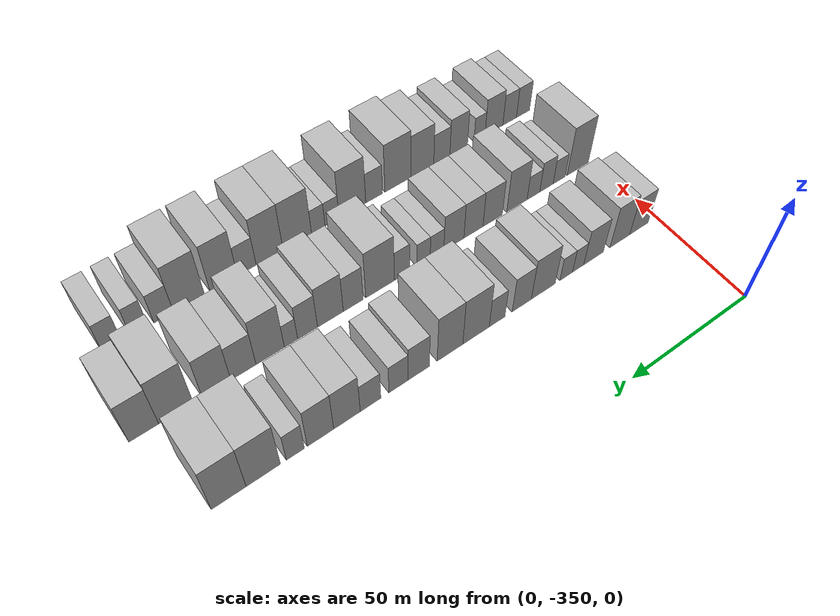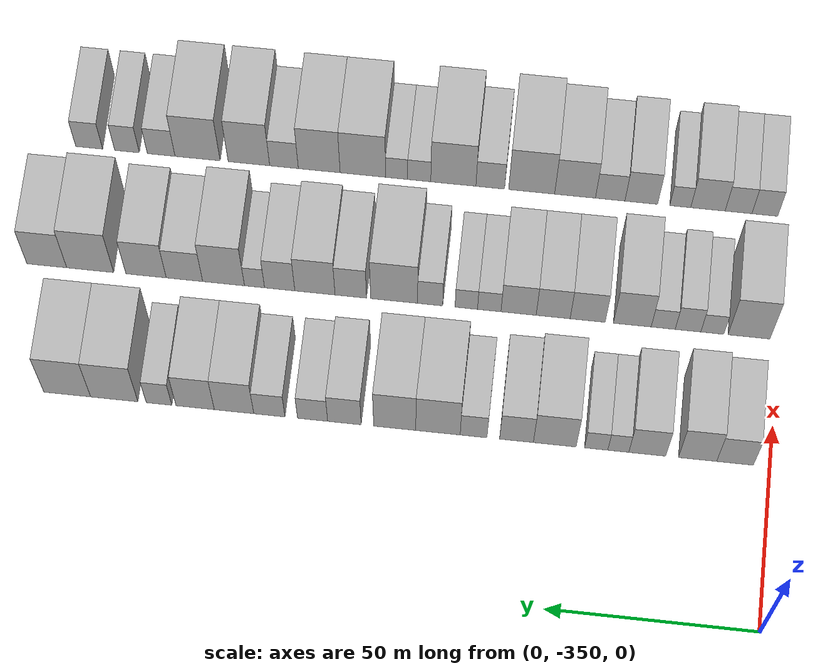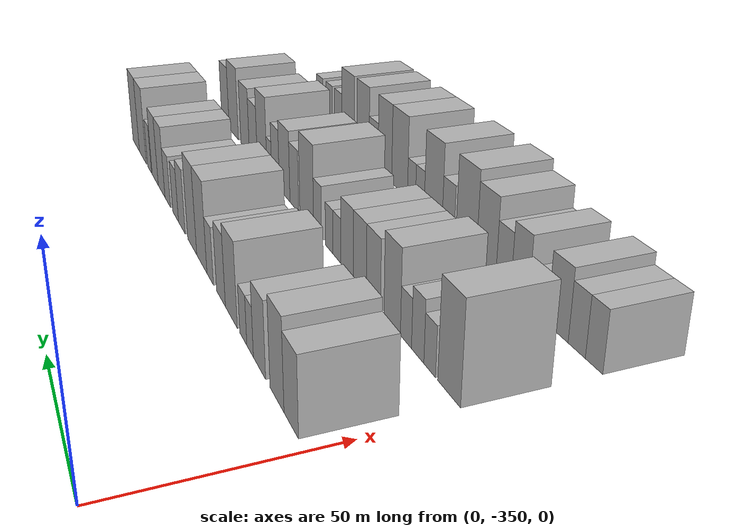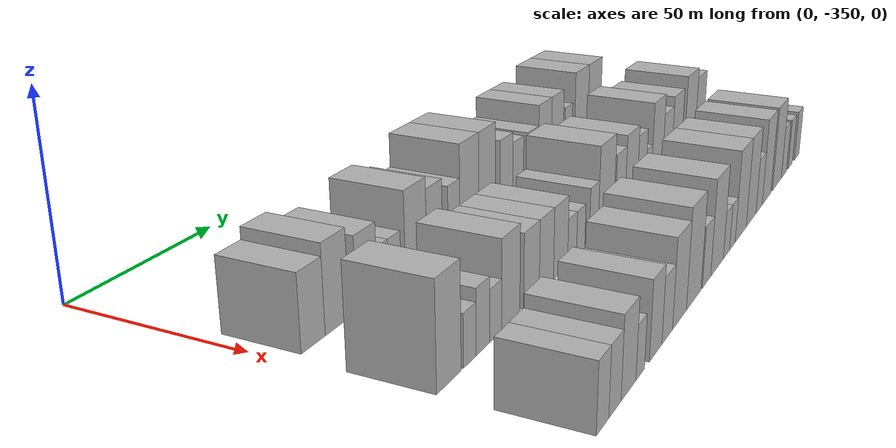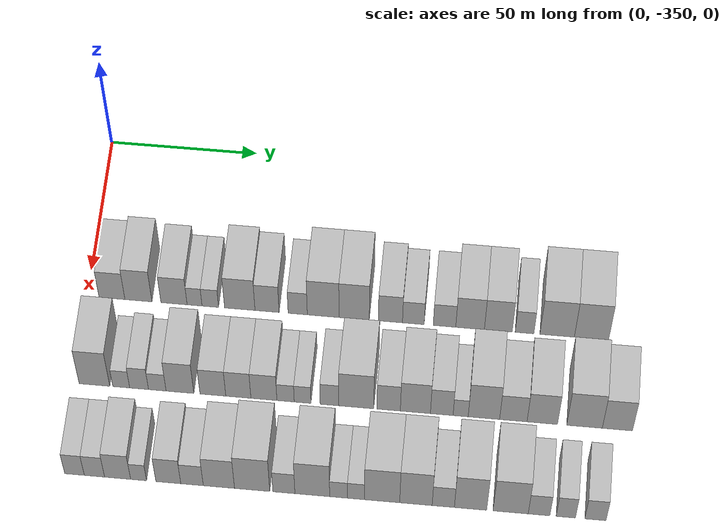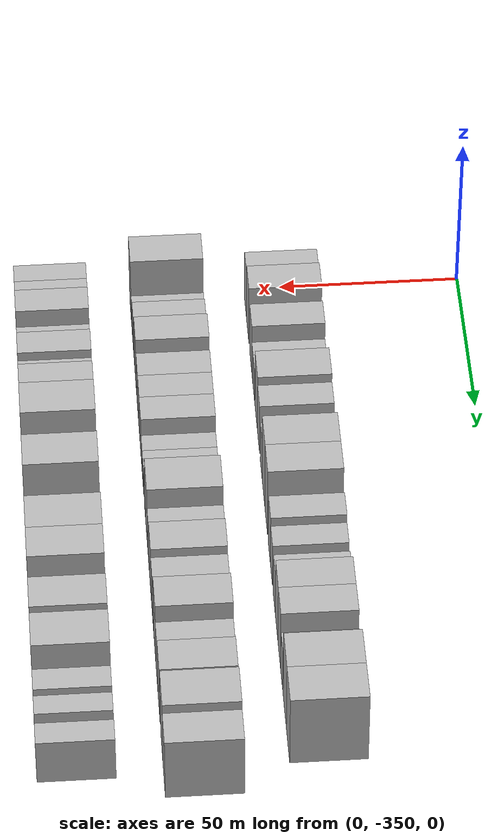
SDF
<sdf version="1.6">
 <world name="default">
  <model name="building_1">
   <static>1</static>
   <pose>50.0000 -341.6680 0 0.000000 0.000000 0.000000</pose>
   <link name="link">
    <pose>0 0 9.00 0 0 0</pose>
    <collision name="collision"><geometry><box><size>20.0000 8.6639 18.0000</size></box></geometry></collision>
    <visual name="visual">
     <cast_shadows>0</cast_shadows>
     <geometry><box><size>20.0000 8.6639 18.0000</size></box></geometry>
     <material>
      <script>
       <uri>model://HANNAS_wall/materials/scripts</uri>
       <uri>model://HANNAS_wall/materials/textures</uri>
       <name>vrc/HANNAS_wall</name>
      </script>
     </material>
    </visual>
   </link>
  </model>
  <model name="building_2">
   <static>1</static>
   <pose>50.0000 -332.8158 0 0.000000 0.000000 0.000000</pose>
   <link name="link">
    <pose>0 0 10.50 0 0 0</pose>
    <collision name="collision"><geometry><box><size>20.0000 9.0405 21.0000</size></box></geometry></collision>
    <visual name="visual">
     <cast_shadows>0</cast_shadows>
     <geometry><box><size>20.0000 9.0405 21.0000</size></box></geometry>
     <material>
      <script>
       <uri>model://HANNAS_wall/materials/scripts</uri>
       <uri>model://HANNAS_wall/materials/textures</uri>
       <name>vrc/HANNAS_wall</name>
      </script>
     </material>
    </visual>
   </link>
  </model>
  <model name="building_3">
   <static>1</static>
   <pose>50.0000 -320.9205 0 0.000000 0.000000 0.000000</pose>
   <link name="link">
    <pose>0 0 9.00 0 0 0</pose>
    <collision name="collision"><geometry><box><size>20.0000 8.7500 18.0000</size></box></geometry></collision>
    <visual name="visual">
     <cast_shadows>0</cast_shadows>
     <geometry><box><size>20.0000 8.7500 18.0000</size></box></geometry>
     <material>
      <script>
       <uri>model://HANNAS_wall/materials/scripts</uri>
       <uri>model://HANNAS_wall/materials/textures</uri>
       <name>vrc/HANNAS_wall</name>
      </script>
     </material>
    </visual>
   </link>
  </model>
  <model name="building_4">
   <static>1</static>
   <pose>50.0000 -314.0533 0 0.000000 0.000000 0.000000</pose>
   <link name="link">
    <pose>0 0 6.00 0 0 0</pose>
    <collision name="collision"><geometry><box><size>20.0000 4.9846 12.0000</size></box></geometry></collision>
    <visual name="visual">
     <cast_shadows>0</cast_shadows>
     <geometry><box><size>20.0000 4.9846 12.0000</size></box></geometry>
     <material>
      <script>
       <uri>model://HANNAS_wall/materials/scripts</uri>
       <uri>model://HANNAS_wall/materials/textures</uri>
       <name>vrc/HANNAS_wall</name>
      </script>
     </material>
    </visual>
   </link>
  </model>
  <model name="building_5">
   <static>1</static>
   <pose>50.0000 -308.8026 0 0.000000 0.000000 0.000000</pose>
   <link name="link">
    <pose>0 0 6.00 0 0 0</pose>
    <collision name="collision"><geometry><box><size>20.0000 5.5168 12.0000</size></box></geometry></collision>
    <visual name="visual">
     <cast_shadows>0</cast_shadows>
     <geometry><box><size>20.0000 5.5168 12.0000</size></box></geometry>
     <material>
      <script>
       <uri>model://HANNAS_wall/materials/scripts</uri>
       <uri>model://HANNAS_wall/materials/textures</uri>
       <name>vrc/HANNAS_wall</name>
      </script>
     </material>
    </visual>
   </link>
  </model>
  <model name="building_6">
   <static>1</static>
   <pose>50.0000 -298.9697 0 0.000000 0.000000 0.000000</pose>
   <link name="link">
    <pose>0 0 10.50 0 0 0</pose>
    <collision name="collision"><geometry><box><size>20.0000 10.1490 21.0000</size></box></geometry></collision>
    <visual name="visual">
     <cast_shadows>0</cast_shadows>
     <geometry><box><size>20.0000 10.1490 21.0000</size></box></geometry>
     <material>
      <script>
       <uri>model://HANNAS_wall/materials/scripts</uri>
       <uri>model://HANNAS_wall/materials/textures</uri>
       <name>vrc/HANNAS_wall</name>
      </script>
     </material>
    </visual>
   </link>
  </model>
  <model name="building_7">
   <static>1</static>
   <pose>50.0000 -289.8867 0 0.000000 0.000000 0.000000</pose>
   <link name="link">
    <pose>0 0 9.00 0 0 0</pose>
    <collision name="collision"><geometry><box><size>20.0000 8.0170 18.0000</size></box></geometry></collision>
    <visual name="visual">
     <cast_shadows>0</cast_shadows>
     <geometry><box><size>20.0000 8.0170 18.0000</size></box></geometry>
     <material>
      <script>
       <uri>model://HANNAS_wall/materials/scripts</uri>
       <uri>model://HANNAS_wall/materials/textures</uri>
       <name>vrc/HANNAS_wall</name>
      </script>
     </material>
    </visual>
   </link>
  </model>
  <model name="building_8">
   <static>1</static>
   <pose>50.0000 -279.6872 0 0.000000 0.000000 0.000000</pose>
   <link name="link">
    <pose>0 0 7.50 0 0 0</pose>
    <collision name="collision"><geometry><box><size>20.0000 6.3818 15.0000</size></box></geometry></collision>
    <visual name="visual">
     <cast_shadows>0</cast_shadows>
     <geometry><box><size>20.0000 6.3818 15.0000</size></box></geometry>
     <material>
      <script>
       <uri>model://HANNAS_wall/materials/scripts</uri>
       <uri>model://HANNAS_wall/materials/textures</uri>
       <name>vrc/HANNAS_wall</name>
      </script>
     </material>
    </visual>
   </link>
  </model>
  <model name="building_9">
   <static>1</static>
   <pose>50.0000 -271.2123 0 0.000000 0.000000 0.000000</pose>
   <link name="link">
    <pose>0 0 12.00 0 0 0</pose>
    <collision name="collision"><geometry><box><size>20.0000 10.5679 24.0000</size></box></geometry></collision>
    <visual name="visual">
     <cast_shadows>0</cast_shadows>
     <geometry><box><size>20.0000 10.5679 24.0000</size></box></geometry>
     <material>
      <script>
       <uri>model://HANNAS_wall/materials/scripts</uri>
       <uri>model://HANNAS_wall/materials/textures</uri>
       <name>vrc/HANNAS_wall</name>
      </script>
     </material>
    </visual>
   </link>
  </model>
  <model name="building_10">
   <static>1</static>
   <pose>50.0000 -260.9141 0 0.000000 0.000000 0.000000</pose>
   <link name="link">
    <pose>0 0 12.00 0 0 0</pose>
    <collision name="collision"><geometry><box><size>20.0000 10.0286 24.0000</size></box></geometry></collision>
    <visual name="visual">
     <cast_shadows>0</cast_shadows>
     <geometry><box><size>20.0000 10.0286 24.0000</size></box></geometry>
     <material>
      <script>
       <uri>model://HANNAS_wall/materials/scripts</uri>
       <uri>model://HANNAS_wall/materials/textures</uri>
       <name>vrc/HANNAS_wall</name>
      </script>
     </material>
    </visual>
   </link>
  </model>
  <model name="building_11">
   <static>1</static>
   <pose>50.0000 -248.8983 0 0.000000 0.000000 0.000000</pose>
   <link name="link">
    <pose>0 0 9.00 0 0 0</pose>
    <collision name="collision"><geometry><box><size>20.0000 8.0029 18.0000</size></box></geometry></collision>
    <visual name="visual">
     <cast_shadows>0</cast_shadows>
     <geometry><box><size>20.0000 8.0029 18.0000</size></box></geometry>
     <material>
      <script>
       <uri>model://HANNAS_wall/materials/scripts</uri>
       <uri>model://HANNAS_wall/materials/textures</uri>
       <name>vrc/HANNAS_wall</name>
      </script>
     </material>
    </visual>
   </link>
  </model>
  <model name="building_12">
   <static>1</static>
   <pose>50.0000 -241.3023 0 0.000000 0.000000 0.000000</pose>
   <link name="link">
    <pose>0 0 7.50 0 0 0</pose>
    <collision name="collision"><geometry><box><size>20.0000 7.1892 15.0000</size></box></geometry></collision>
    <visual name="visual">
     <cast_shadows>0</cast_shadows>
     <geometry><box><size>20.0000 7.1892 15.0000</size></box></geometry>
     <material>
      <script>
       <uri>model://HANNAS_wall/materials/scripts</uri>
       <uri>model://HANNAS_wall/materials/textures</uri>
       <name>vrc/HANNAS_wall</name>
      </script>
     </material>
    </visual>
   </link>
  </model>
  <model name="building_13">
   <static>1</static>
   <pose>50.0000 -230.9784 0 0.000000 0.000000 0.000000</pose>
   <link name="link">
    <pose>0 0 7.50 0 0 0</pose>
    <collision name="collision"><geometry><box><size>20.0000 7.4584 15.0000</size></box></geometry></collision>
    <visual name="visual">
     <cast_shadows>0</cast_shadows>
     <geometry><box><size>20.0000 7.4584 15.0000</size></box></geometry>
     <material>
      <script>
       <uri>model://HANNAS_wall/materials/scripts</uri>
       <uri>model://HANNAS_wall/materials/textures</uri>
       <name>vrc/HANNAS_wall</name>
      </script>
     </material>
    </visual>
   </link>
  </model>
  <model name="building_14">
   <static>1</static>
   <pose>50.0000 -222.5183 0 0.000000 0.000000 0.000000</pose>
   <link name="link">
    <pose>0 0 10.50 0 0 0</pose>
    <collision name="collision"><geometry><box><size>20.0000 9.4620 21.0000</size></box></geometry></collision>
    <visual name="visual">
     <cast_shadows>0</cast_shadows>
     <geometry><box><size>20.0000 9.4620 21.0000</size></box></geometry>
     <material>
      <script>
       <uri>model://HANNAS_wall/materials/scripts</uri>
       <uri>model://HANNAS_wall/materials/textures</uri>
       <name>vrc/HANNAS_wall</name>
      </script>
     </material>
    </visual>
   </link>
  </model>
  <model name="building_15">
   <static>1</static>
   <pose>50.0000 -213.1940 0 0.000000 0.000000 0.000000</pose>
   <link name="link">
    <pose>0 0 10.50 0 0 0</pose>
    <collision name="collision"><geometry><box><size>20.0000 9.1866 21.0000</size></box></geometry></collision>
    <visual name="visual">
     <cast_shadows>0</cast_shadows>
     <geometry><box><size>20.0000 9.1866 21.0000</size></box></geometry>
     <material>
      <script>
       <uri>model://HANNAS_wall/materials/scripts</uri>
       <uri>model://HANNAS_wall/materials/textures</uri>
       <name>vrc/HANNAS_wall</name>
      </script>
     </material>
    </visual>
   </link>
  </model>
  <model name="building_16">
   <static>1</static>
   <pose>50.0000 -204.5228 0 0.000000 0.000000 0.000000</pose>
   <link name="link">
    <pose>0 0 7.50 0 0 0</pose>
    <collision name="collision"><geometry><box><size>20.0000 6.1557 15.0000</size></box></geometry></collision>
    <visual name="visual">
     <cast_shadows>0</cast_shadows>
     <geometry><box><size>20.0000 6.1557 15.0000</size></box></geometry>
     <material>
      <script>
       <uri>model://HANNAS_wall/materials/scripts</uri>
       <uri>model://HANNAS_wall/materials/textures</uri>
       <name>vrc/HANNAS_wall</name>
      </script>
     </material>
    </visual>
   </link>
  </model>
  <model name="building_17">
   <static>1</static>
   <pose>50.0000 -193.7689 0 0.000000 0.000000 0.000000</pose>
   <link name="link">
    <pose>0 0 12.00 0 0 0</pose>
    <collision name="collision"><geometry><box><size>20.0000 11.3522 24.0000</size></box></geometry></collision>
    <visual name="visual">
     <cast_shadows>0</cast_shadows>
     <geometry><box><size>20.0000 11.3522 24.0000</size></box></geometry>
     <material>
      <script>
       <uri>model://HANNAS_wall/materials/scripts</uri>
       <uri>model://HANNAS_wall/materials/textures</uri>
       <name>vrc/HANNAS_wall</name>
      </script>
     </material>
    </visual>
   </link>
  </model>
  <model name="building_18">
   <static>1</static>
   <pose>50.0000 -182.4504 0 0.000000 0.000000 0.000000</pose>
   <link name="link">
    <pose>0 0 12.00 0 0 0</pose>
    <collision name="collision"><geometry><box><size>20.0000 11.2848 24.0000</size></box></geometry></collision>
    <visual name="visual">
     <cast_shadows>0</cast_shadows>
     <geometry><box><size>20.0000 11.2848 24.0000</size></box></geometry>
     <material>
      <script>
       <uri>model://HANNAS_wall/materials/scripts</uri>
       <uri>model://HANNAS_wall/materials/textures</uri>
       <name>vrc/HANNAS_wall</name>
      </script>
     </material>
    </visual>
   </link>
  </model>
  <model name="building_81">
   <static>1</static>
   <pose>82.0000 -342.9613 0 0.000000 0.000000 0.000000</pose>
   <link name="link">
    <pose>0 0 12.00 0 0 0</pose>
    <collision name="collision"><geometry><box><size>20.0000 10.0775 24.0000</size></box></geometry></collision>
    <visual name="visual">
     <cast_shadows>0</cast_shadows>
     <geometry><box><size>20.0000 10.0775 24.0000</size></box></geometry>
     <material>
      <script>
       <uri>model://HANNAS_wall/materials/scripts</uri>
       <uri>model://HANNAS_wall/materials/textures</uri>
       <name>vrc/HANNAS_wall</name>
      </script>
     </material>
    </visual>
   </link>
  </model>
  <model name="building_82">
   <static>1</static>
   <pose>82.0000 -334.1534 0 0.000000 0.000000 0.000000</pose>
   <link name="link">
    <pose>0 0 6.00 0 0 0</pose>
    <collision name="collision"><geometry><box><size>20.0000 5.5384 12.0000</size></box></geometry></collision>
    <visual name="visual">
     <cast_shadows>0</cast_shadows>
     <geometry><box><size>20.0000 5.5384 12.0000</size></box></geometry>
     <material>
      <script>
       <uri>model://HANNAS_wall/materials/scripts</uri>
       <uri>model://HANNAS_wall/materials/textures</uri>
       <name>vrc/HANNAS_wall</name>
      </script>
     </material>
    </visual>
   </link>
  </model>
  <model name="building_83">
   <static>1</static>
   <pose>82.0000 -328.2987 0 0.000000 0.000000 0.000000</pose>
   <link name="link">
    <pose>0 0 7.50 0 0 0</pose>
    <collision name="collision"><geometry><box><size>20.0000 6.1709 15.0000</size></box></geometry></collision>
    <visual name="visual">
     <cast_shadows>0</cast_shadows>
     <geometry><box><size>20.0000 6.1709 15.0000</size></box></geometry>
     <material>
      <script>
       <uri>model://HANNAS_wall/materials/scripts</uri>
       <uri>model://HANNAS_wall/materials/textures</uri>
       <name>vrc/HANNAS_wall</name>
      </script>
     </material>
    </visual>
   </link>
  </model>
  <model name="building_84">
   <static>1</static>
   <pose>82.0000 -322.3243 0 0.000000 0.000000 0.000000</pose>
   <link name="link">
    <pose>0 0 6.00 0 0 0</pose>
    <collision name="collision"><geometry><box><size>20.0000 5.7780 12.0000</size></box></geometry></collision>
    <visual name="visual">
     <cast_shadows>0</cast_shadows>
     <geometry><box><size>20.0000 5.7780 12.0000</size></box></geometry>
     <material>
      <script>
       <uri>model://HANNAS_wall/materials/scripts</uri>
       <uri>model://HANNAS_wall/materials/textures</uri>
       <name>vrc/HANNAS_wall</name>
      </script>
     </material>
    </visual>
   </link>
  </model>
  <model name="building_85">
   <static>1</static>
   <pose>82.0000 -314.8796 0 0.000000 0.000000 0.000000</pose>
   <link name="link">
    <pose>0 0 10.50 0 0 0</pose>
    <collision name="collision"><geometry><box><size>20.0000 9.1114 21.0000</size></box></geometry></collision>
    <visual name="visual">
     <cast_shadows>0</cast_shadows>
     <geometry><box><size>20.0000 9.1114 21.0000</size></box></geometry>
     <material>
      <script>
       <uri>model://HANNAS_wall/materials/scripts</uri>
       <uri>model://HANNAS_wall/materials/textures</uri>
       <name>vrc/HANNAS_wall</name>
      </script>
     </material>
    </visual>
   </link>
  </model>
  <model name="building_86">
   <static>1</static>
   <pose>82.0000 -304.0962 0 0.000000 0.000000 0.000000</pose>
   <link name="link">
    <pose>0 0 9.00 0 0 0</pose>
    <collision name="collision"><geometry><box><size>20.0000 8.4553 18.0000</size></box></geometry></collision>
    <visual name="visual">
     <cast_shadows>0</cast_shadows>
     <geometry><box><size>20.0000 8.4553 18.0000</size></box></geometry>
     <material>
      <script>
       <uri>model://HANNAS_wall/materials/scripts</uri>
       <uri>model://HANNAS_wall/materials/textures</uri>
       <name>vrc/HANNAS_wall</name>
      </script>
     </material>
    </visual>
   </link>
  </model>
  <model name="building_87">
   <static>1</static>
   <pose>82.0000 -295.7610 0 0.000000 0.000000 0.000000</pose>
   <link name="link">
    <pose>0 0 9.00 0 0 0</pose>
    <collision name="collision"><geometry><box><size>20.0000 8.2152 18.0000</size></box></geometry></collision>
    <visual name="visual">
     <cast_shadows>0</cast_shadows>
     <geometry><box><size>20.0000 8.2152 18.0000</size></box></geometry>
     <material>
      <script>
       <uri>model://HANNAS_wall/materials/scripts</uri>
       <uri>model://HANNAS_wall/materials/textures</uri>
       <name>vrc/HANNAS_wall</name>
      </script>
     </material>
    </visual>
   </link>
  </model>
  <model name="building_88">
   <static>1</static>
   <pose>82.0000 -287.3964 0 0.000000 0.000000 0.000000</pose>
   <link name="link">
    <pose>0 0 9.00 0 0 0</pose>
    <collision name="collision"><geometry><box><size>20.0000 8.5140 18.0000</size></box></geometry></collision>
    <visual name="visual">
     <cast_shadows>0</cast_shadows>
     <geometry><box><size>20.0000 8.5140 18.0000</size></box></geometry>
     <material>
      <script>
       <uri>model://HANNAS_wall/materials/scripts</uri>
       <uri>model://HANNAS_wall/materials/textures</uri>
       <name>vrc/HANNAS_wall</name>
      </script>
     </material>
    </visual>
   </link>
  </model>
  <model name="building_89">
   <static>1</static>
   <pose>82.0000 -280.3068 0 0.000000 0.000000 0.000000</pose>
   <link name="link">
    <pose>0 0 6.00 0 0 0</pose>
    <collision name="collision"><geometry><box><size>20.0000 5.6651 12.0000</size></box></geometry></collision>
    <visual name="visual">
     <cast_shadows>0</cast_shadows>
     <geometry><box><size>20.0000 5.6651 12.0000</size></box></geometry>
     <material>
      <script>
       <uri>model://HANNAS_wall/materials/scripts</uri>
       <uri>model://HANNAS_wall/materials/textures</uri>
       <name>vrc/HANNAS_wall</name>
      </script>
     </material>
    </visual>
   </link>
  </model>
  <model name="building_90">
   <static>1</static>
   <pose>82.0000 -274.7508 0 0.000000 0.000000 0.000000</pose>
   <link name="link">
    <pose>0 0 6.00 0 0 0</pose>
    <collision name="collision"><geometry><box><size>20.0000 5.4470 12.0000</size></box></geometry></collision>
    <visual name="visual">
     <cast_shadows>0</cast_shadows>
     <geometry><box><size>20.0000 5.4470 12.0000</size></box></geometry>
     <material>
      <script>
       <uri>model://HANNAS_wall/materials/scripts</uri>
       <uri>model://HANNAS_wall/materials/textures</uri>
       <name>vrc/HANNAS_wall</name>
      </script>
     </material>
    </visual>
   </link>
  </model>
  <model name="building_91">
   <static>1</static>
   <pose>82.0000 -265.9827 0 0.000000 0.000000 0.000000</pose>
   <link name="link">
    <pose>0 0 7.50 0 0 0</pose>
    <collision name="collision"><geometry><box><size>20.0000 6.0891 15.0000</size></box></geometry></collision>
    <visual name="visual">
     <cast_shadows>0</cast_shadows>
     <geometry><box><size>20.0000 6.0891 15.0000</size></box></geometry>
     <material>
      <script>
       <uri>model://HANNAS_wall/materials/scripts</uri>
       <uri>model://HANNAS_wall/materials/textures</uri>
       <name>vrc/HANNAS_wall</name>
      </script>
     </material>
    </visual>
   </link>
  </model>
  <model name="building_92">
   <static>1</static>
   <pose>82.0000 -257.2447 0 0.000000 0.000000 0.000000</pose>
   <link name="link">
    <pose>0 0 12.00 0 0 0</pose>
    <collision name="collision"><geometry><box><size>20.0000 11.3870 24.0000</size></box></geometry></collision>
    <visual name="visual">
     <cast_shadows>0</cast_shadows>
     <geometry><box><size>20.0000 11.3870 24.0000</size></box></geometry>
     <material>
      <script>
       <uri>model://HANNAS_wall/materials/scripts</uri>
       <uri>model://HANNAS_wall/materials/textures</uri>
       <name>vrc/HANNAS_wall</name>
      </script>
     </material>
    </visual>
   </link>
  </model>
  <model name="building_93">
   <static>1</static>
   <pose>82.0000 -246.7193 0 0.000000 0.000000 0.000000</pose>
   <link name="link">
    <pose>0 0 9.00 0 0 0</pose>
    <collision name="collision"><geometry><box><size>20.0000 7.6638 18.0000</size></box></geometry></collision>
    <visual name="visual">
     <cast_shadows>0</cast_shadows>
     <geometry><box><size>20.0000 7.6638 18.0000</size></box></geometry>
     <material>
      <script>
       <uri>model://HANNAS_wall/materials/scripts</uri>
       <uri>model://HANNAS_wall/materials/textures</uri>
       <name>vrc/HANNAS_wall</name>
      </script>
     </material>
    </visual>
   </link>
  </model>
  <model name="building_94">
   <static>1</static>
   <pose>82.0000 -237.9976 0 0.000000 0.000000 0.000000</pose>
   <link name="link">
    <pose>0 0 10.50 0 0 0</pose>
    <collision name="collision"><geometry><box><size>20.0000 9.7795 21.0000</size></box></geometry></collision>
    <visual name="visual">
     <cast_shadows>0</cast_shadows>
     <geometry><box><size>20.0000 9.7795 21.0000</size></box></geometry>
     <material>
      <script>
       <uri>model://HANNAS_wall/materials/scripts</uri>
       <uri>model://HANNAS_wall/materials/textures</uri>
       <name>vrc/HANNAS_wall</name>
      </script>
     </material>
    </visual>
   </link>
  </model>
  <model name="building_95">
   <static>1</static>
   <pose>82.0000 -229.4237 0 0.000000 0.000000 0.000000</pose>
   <link name="link">
    <pose>0 0 9.00 0 0 0</pose>
    <collision name="collision"><geometry><box><size>20.0000 7.3684 18.0000</size></box></geometry></collision>
    <visual name="visual">
     <cast_shadows>0</cast_shadows>
     <geometry><box><size>20.0000 7.3684 18.0000</size></box></geometry>
     <material>
      <script>
       <uri>model://HANNAS_wall/materials/scripts</uri>
       <uri>model://HANNAS_wall/materials/textures</uri>
       <name>vrc/HANNAS_wall</name>
      </script>
     </material>
    </visual>
   </link>
  </model>
  <model name="building_96">
   <static>1</static>
   <pose>82.0000 -223.2938 0 0.000000 0.000000 0.000000</pose>
   <link name="link">
    <pose>0 0 6.00 0 0 0</pose>
    <collision name="collision"><geometry><box><size>20.0000 4.8915 12.0000</size></box></geometry></collision>
    <visual name="visual">
     <cast_shadows>0</cast_shadows>
     <geometry><box><size>20.0000 4.8915 12.0000</size></box></geometry>
     <material>
      <script>
       <uri>model://HANNAS_wall/materials/scripts</uri>
       <uri>model://HANNAS_wall/materials/textures</uri>
       <name>vrc/HANNAS_wall</name>
      </script>
     </material>
    </visual>
   </link>
  </model>
  <model name="building_97">
   <static>1</static>
   <pose>82.0000 -215.7499 0 0.000000 0.000000 0.000000</pose>
   <link name="link">
    <pose>0 0 12.00 0 0 0</pose>
    <collision name="collision"><geometry><box><size>20.0000 10.1962 24.0000</size></box></geometry></collision>
    <visual name="visual">
     <cast_shadows>0</cast_shadows>
     <geometry><box><size>20.0000 10.1962 24.0000</size></box></geometry>
     <material>
      <script>
       <uri>model://HANNAS_wall/materials/scripts</uri>
       <uri>model://HANNAS_wall/materials/textures</uri>
       <name>vrc/HANNAS_wall</name>
      </script>
     </material>
    </visual>
   </link>
  </model>
  <model name="building_98">
   <static>1</static>
   <pose>82.0000 -206.2066 0 0.000000 0.000000 0.000000</pose>
   <link name="link">
    <pose>0 0 9.00 0 0 0</pose>
    <collision name="collision"><geometry><box><size>20.0000 8.8903 18.0000</size></box></geometry></collision>
    <visual name="visual">
     <cast_shadows>0</cast_shadows>
     <geometry><box><size>20.0000 8.8903 18.0000</size></box></geometry>
     <material>
      <script>
       <uri>model://HANNAS_wall/materials/scripts</uri>
       <uri>model://HANNAS_wall/materials/textures</uri>
       <name>vrc/HANNAS_wall</name>
      </script>
     </material>
    </visual>
   </link>
  </model>
  <model name="building_99">
   <static>1</static>
   <pose>82.0000 -196.8253 0 0.000000 0.000000 0.000000</pose>
   <link name="link">
    <pose>0 0 10.50 0 0 0</pose>
    <collision name="collision"><geometry><box><size>20.0000 9.8723 21.0000</size></box></geometry></collision>
    <visual name="visual">
     <cast_shadows>0</cast_shadows>
     <geometry><box><size>20.0000 9.8723 21.0000</size></box></geometry>
     <material>
      <script>
       <uri>model://HANNAS_wall/materials/scripts</uri>
       <uri>model://HANNAS_wall/materials/textures</uri>
       <name>vrc/HANNAS_wall</name>
      </script>
     </material>
    </visual>
   </link>
  </model>
  <model name="building_100">
   <static>1</static>
   <pose>82.0000 -183.1385 0 0.000000 0.000000 0.000000</pose>
   <link name="link">
    <pose>0 0 12.00 0 0 0</pose>
    <collision name="collision"><geometry><box><size>20.0000 11.5013 24.0000</size></box></geometry></collision>
    <visual name="visual">
     <cast_shadows>0</cast_shadows>
     <geometry><box><size>20.0000 11.5013 24.0000</size></box></geometry>
     <material>
      <script>
       <uri>model://HANNAS_wall/materials/scripts</uri>
       <uri>model://HANNAS_wall/materials/textures</uri>
       <name>vrc/HANNAS_wall</name>
      </script>
     </material>
    </visual>
   </link>
  </model>
  <model name="building_101">
   <static>1</static>
   <pose>82.0000 -172.5107 0 0.000000 0.000000 0.000000</pose>
   <link name="link">
    <pose>0 0 10.50 0 0 0</pose>
    <collision name="collision"><geometry><box><size>20.0000 9.7541 21.0000</size></box></geometry></collision>
    <visual name="visual">
     <cast_shadows>0</cast_shadows>
     <geometry><box><size>20.0000 9.7541 21.0000</size></box></geometry>
     <material>
      <script>
       <uri>model://HANNAS_wall/materials/scripts</uri>
       <uri>model://HANNAS_wall/materials/textures</uri>
       <name>vrc/HANNAS_wall</name>
      </script>
     </material>
    </visual>
   </link>
  </model>
  <model name="building_159">
   <static>1</static>
   <pose>114.0000 -344.8388 0 0.000000 0.000000 0.000000</pose>
   <link name="link">
    <pose>0 0 7.50 0 0 0</pose>
    <collision name="collision"><geometry><box><size>20.0000 6.3224 15.0000</size></box></geometry></collision>
    <visual name="visual">
     <cast_shadows>0</cast_shadows>
     <geometry><box><size>20.0000 6.3224 15.0000</size></box></geometry>
     <material>
      <script>
       <uri>model://HANNAS_wall/materials/scripts</uri>
       <uri>model://HANNAS_wall/materials/textures</uri>
       <name>vrc/HANNAS_wall</name>
      </script>
     </material>
    </visual>
   </link>
  </model>
  <model name="building_160">
   <static>1</static>
   <pose>114.0000 -338.4026 0 0.000000 0.000000 0.000000</pose>
   <link name="link">
    <pose>0 0 7.50 0 0 0</pose>
    <collision name="collision"><geometry><box><size>20.0000 6.5500 15.0000</size></box></geometry></collision>
    <visual name="visual">
     <cast_shadows>0</cast_shadows>
     <geometry><box><size>20.0000 6.5500 15.0000</size></box></geometry>
     <material>
      <script>
       <uri>model://HANNAS_wall/materials/scripts</uri>
       <uri>model://HANNAS_wall/materials/textures</uri>
       <name>vrc/HANNAS_wall</name>
      </script>
     </material>
    </visual>
   </link>
  </model>
  <model name="building_161">
   <static>1</static>
   <pose>114.0000 -330.9198 0 0.000000 0.000000 0.000000</pose>
   <link name="link">
    <pose>0 0 9.00 0 0 0</pose>
    <collision name="collision"><geometry><box><size>20.0000 8.4155 18.0000</size></box></geometry></collision>
    <visual name="visual">
     <cast_shadows>0</cast_shadows>
     <geometry><box><size>20.0000 8.4155 18.0000</size></box></geometry>
     <material>
      <script>
       <uri>model://HANNAS_wall/materials/scripts</uri>
       <uri>model://HANNAS_wall/materials/textures</uri>
       <name>vrc/HANNAS_wall</name>
      </script>
     </material>
    </visual>
   </link>
  </model>
  <model name="building_162">
   <static>1</static>
   <pose>114.0000 -324.1493 0 0.000000 0.000000 0.000000</pose>
   <link name="link">
    <pose>0 0 6.00 0 0 0</pose>
    <collision name="collision"><geometry><box><size>20.0000 5.1255 12.0000</size></box></geometry></collision>
    <visual name="visual">
     <cast_shadows>0</cast_shadows>
     <geometry><box><size>20.0000 5.1255 12.0000</size></box></geometry>
     <material>
      <script>
       <uri>model://HANNAS_wall/materials/scripts</uri>
       <uri>model://HANNAS_wall/materials/textures</uri>
       <name>vrc/HANNAS_wall</name>
      </script>
     </material>
    </visual>
   </link>
  </model>
  <model name="building_163">
   <static>1</static>
   <pose>114.0000 -314.5794 0 0.000000 0.000000 0.000000</pose>
   <link name="link">
    <pose>0 0 9.00 0 0 0</pose>
    <collision name="collision"><geometry><box><size>20.0000 8.0145 18.0000</size></box></geometry></collision>
    <visual name="visual">
     <cast_shadows>0</cast_shadows>
     <geometry><box><size>20.0000 8.0145 18.0000</size></box></geometry>
     <material>
      <script>
       <uri>model://HANNAS_wall/materials/scripts</uri>
       <uri>model://HANNAS_wall/materials/textures</uri>
       <name>vrc/HANNAS_wall</name>
      </script>
     </material>
    </visual>
   </link>
  </model>
  <model name="building_164">
   <static>1</static>
   <pose>114.0000 -306.9518 0 0.000000 0.000000 0.000000</pose>
   <link name="link">
    <pose>0 0 7.50 0 0 0</pose>
    <collision name="collision"><geometry><box><size>20.0000 7.2407 15.0000</size></box></geometry></collision>
    <visual name="visual">
     <cast_shadows>0</cast_shadows>
     <geometry><box><size>20.0000 7.2407 15.0000</size></box></geometry>
     <material>
      <script>
       <uri>model://HANNAS_wall/materials/scripts</uri>
       <uri>model://HANNAS_wall/materials/textures</uri>
       <name>vrc/HANNAS_wall</name>
      </script>
     </material>
    </visual>
   </link>
  </model>
  <model name="building_165">
   <static>1</static>
   <pose>114.0000 -298.3111 0 0.000000 0.000000 0.000000</pose>
   <link name="link">
    <pose>0 0 10.50 0 0 0</pose>
    <collision name="collision"><geometry><box><size>20.0000 10.0407 21.0000</size></box></geometry></collision>
    <visual name="visual">
     <cast_shadows>0</cast_shadows>
     <geometry><box><size>20.0000 10.0407 21.0000</size></box></geometry>
     <material>
      <script>
       <uri>model://HANNAS_wall/materials/scripts</uri>
       <uri>model://HANNAS_wall/materials/textures</uri>
       <name>vrc/HANNAS_wall</name>
      </script>
     </material>
    </visual>
   </link>
  </model>
  <model name="building_166">
   <static>1</static>
   <pose>114.0000 -287.6325 0 0.000000 0.000000 0.000000</pose>
   <link name="link">
    <pose>0 0 12.00 0 0 0</pose>
    <collision name="collision"><geometry><box><size>20.0000 11.3166 24.0000</size></box></geometry></collision>
    <visual name="visual">
     <cast_shadows>0</cast_shadows>
     <geometry><box><size>20.0000 11.3166 24.0000</size></box></geometry>
     <material>
      <script>
       <uri>model://HANNAS_wall/materials/scripts</uri>
       <uri>model://HANNAS_wall/materials/textures</uri>
       <name>vrc/HANNAS_wall</name>
      </script>
     </material>
    </visual>
   </link>
  </model>
  <model name="building_167">
   <static>1</static>
   <pose>114.0000 -277.4454 0 0.000000 0.000000 0.000000</pose>
   <link name="link">
    <pose>0 0 7.50 0 0 0</pose>
    <collision name="collision"><geometry><box><size>20.0000 7.0577 15.0000</size></box></geometry></collision>
    <visual name="visual">
     <cast_shadows>0</cast_shadows>
     <geometry><box><size>20.0000 7.0577 15.0000</size></box></geometry>
     <material>
      <script>
       <uri>model://HANNAS_wall/materials/scripts</uri>
       <uri>model://HANNAS_wall/materials/textures</uri>
       <name>vrc/HANNAS_wall</name>
      </script>
     </material>
    </visual>
   </link>
  </model>
  <model name="building_168">
   <static>1</static>
   <pose>114.0000 -268.3511 0 0.000000 0.000000 0.000000</pose>
   <link name="link">
    <pose>0 0 12.00 0 0 0</pose>
    <collision name="collision"><geometry><box><size>20.0000 11.1310 24.0000</size></box></geometry></collision>
    <visual name="visual">
     <cast_shadows>0</cast_shadows>
     <geometry><box><size>20.0000 11.1310 24.0000</size></box></geometry>
     <material>
      <script>
       <uri>model://HANNAS_wall/materials/scripts</uri>
       <uri>model://HANNAS_wall/materials/textures</uri>
       <name>vrc/HANNAS_wall</name>
      </script>
     </material>
    </visual>
   </link>
  </model>
  <model name="building_169">
   <static>1</static>
   <pose>114.0000 -259.9375 0 0.000000 0.000000 0.000000</pose>
   <link name="link">
    <pose>0 0 6.00 0 0 0</pose>
    <collision name="collision"><geometry><box><size>20.0000 5.6962 12.0000</size></box></geometry></collision>
    <visual name="visual">
     <cast_shadows>0</cast_shadows>
     <geometry><box><size>20.0000 5.6962 12.0000</size></box></geometry>
     <material>
      <script>
       <uri>model://HANNAS_wall/materials/scripts</uri>
       <uri>model://HANNAS_wall/materials/textures</uri>
       <name>vrc/HANNAS_wall</name>
      </script>
     </material>
    </visual>
   </link>
  </model>
  <model name="building_170">
   <static>1</static>
   <pose>114.0000 -254.3724 0 0.000000 0.000000 0.000000</pose>
   <link name="link">
    <pose>0 0 6.00 0 0 0</pose>
    <collision name="collision"><geometry><box><size>20.0000 5.4340 12.0000</size></box></geometry></collision>
    <visual name="visual">
     <cast_shadows>0</cast_shadows>
     <geometry><box><size>20.0000 5.4340 12.0000</size></box></geometry>
     <material>
      <script>
       <uri>model://HANNAS_wall/materials/scripts</uri>
       <uri>model://HANNAS_wall/materials/textures</uri>
       <name>vrc/HANNAS_wall</name>
      </script>
     </material>
    </visual>
   </link>
  </model>
  <model name="building_171">
   <static>1</static>
   <pose>114.0000 -246.0169 0 0.000000 0.000000 0.000000</pose>
   <link name="link">
    <pose>0 0 12.00 0 0 0</pose>
    <collision name="collision"><geometry><box><size>20.0000 11.2771 24.0000</size></box></geometry></collision>
    <visual name="visual">
     <cast_shadows>0</cast_shadows>
     <geometry><box><size>20.0000 11.2771 24.0000</size></box></geometry>
     <material>
      <script>
       <uri>model://HANNAS_wall/materials/scripts</uri>
       <uri>model://HANNAS_wall/materials/textures</uri>
       <name>vrc/HANNAS_wall</name>
      </script>
     </material>
    </visual>
   </link>
  </model>
  <model name="building_172">
   <static>1</static>
   <pose>114.0000 -235.2030 0 0.000000 0.000000 0.000000</pose>
   <link name="link">
    <pose>0 0 12.00 0 0 0</pose>
    <collision name="collision"><geometry><box><size>20.0000 10.3506 24.0000</size></box></geometry></collision>
    <visual name="visual">
     <cast_shadows>0</cast_shadows>
     <geometry><box><size>20.0000 10.3506 24.0000</size></box></geometry>
     <material>
      <script>
       <uri>model://HANNAS_wall/materials/scripts</uri>
       <uri>model://HANNAS_wall/materials/textures</uri>
       <name>vrc/HANNAS_wall</name>
      </script>
     </material>
    </visual>
   </link>
  </model>
  <model name="building_173">
   <static>1</static>
   <pose>114.0000 -226.4839 0 0.000000 0.000000 0.000000</pose>
   <link name="link">
    <pose>0 0 7.50 0 0 0</pose>
    <collision name="collision"><geometry><box><size>20.0000 7.0877 15.0000</size></box></geometry></collision>
    <visual name="visual">
     <cast_shadows>0</cast_shadows>
     <geometry><box><size>20.0000 7.0877 15.0000</size></box></geometry>
     <material>
      <script>
       <uri>model://HANNAS_wall/materials/scripts</uri>
       <uri>model://HANNAS_wall/materials/textures</uri>
       <name>vrc/HANNAS_wall</name>
      </script>
     </material>
    </visual>
   </link>
  </model>
  <model name="building_174">
   <static>1</static>
   <pose>114.0000 -217.7899 0 0.000000 0.000000 0.000000</pose>
   <link name="link">
    <pose>0 0 12.00 0 0 0</pose>
    <collision name="collision"><geometry><box><size>20.0000 10.3003 24.0000</size></box></geometry></collision>
    <visual name="visual">
     <cast_shadows>0</cast_shadows>
     <geometry><box><size>20.0000 10.3003 24.0000</size></box></geometry>
     <material>
      <script>
       <uri>model://HANNAS_wall/materials/scripts</uri>
       <uri>model://HANNAS_wall/materials/textures</uri>
       <name>vrc/HANNAS_wall</name>
      </script>
     </material>
    </visual>
   </link>
  </model>
  <model name="building_175">
   <static>1</static>
   <pose>114.0000 -205.0342 0 0.000000 0.000000 0.000000</pose>
   <link name="link">
    <pose>0 0 12.00 0 0 0</pose>
    <collision name="collision"><geometry><box><size>20.0000 11.2111 24.0000</size></box></geometry></collision>
    <visual name="visual">
     <cast_shadows>0</cast_shadows>
     <geometry><box><size>20.0000 11.2111 24.0000</size></box></geometry>
     <material>
      <script>
       <uri>model://HANNAS_wall/materials/scripts</uri>
       <uri>model://HANNAS_wall/materials/textures</uri>
       <name>vrc/HANNAS_wall</name>
      </script>
     </material>
    </visual>
   </link>
  </model>
  <model name="building_176">
   <static>1</static>
   <pose>114.0000 -195.9820 0 0.000000 0.000000 0.000000</pose>
   <link name="link">
    <pose>0 0 7.50 0 0 0</pose>
    <collision name="collision"><geometry><box><size>20.0000 6.8932 15.0000</size></box></geometry></collision>
    <visual name="visual">
     <cast_shadows>0</cast_shadows>
     <geometry><box><size>20.0000 6.8932 15.0000</size></box></geometry>
     <material>
      <script>
       <uri>model://HANNAS_wall/materials/scripts</uri>
       <uri>model://HANNAS_wall/materials/textures</uri>
       <name>vrc/HANNAS_wall</name>
      </script>
     </material>
    </visual>
   </link>
  </model>
  <model name="building_177">
   <static>1</static>
   <pose>114.0000 -187.4762 0 0.000000 0.000000 0.000000</pose>
   <link name="link">
    <pose>0 0 7.50 0 0 0</pose>
    <collision name="collision"><geometry><box><size>20.0000 6.1184 15.0000</size></box></geometry></collision>
    <visual name="visual">
     <cast_shadows>0</cast_shadows>
     <geometry><box><size>20.0000 6.1184 15.0000</size></box></geometry>
     <material>
      <script>
       <uri>model://HANNAS_wall/materials/scripts</uri>
       <uri>model://HANNAS_wall/materials/textures</uri>
       <name>vrc/HANNAS_wall</name>
      </script>
     </material>
    </visual>
   </link>
  </model>
  <model name="building_178">
   <static>1</static>
   <pose>114.0000 -178.0680 0 0.000000 0.000000 0.000000</pose>
   <link name="link">
    <pose>0 0 7.50 0 0 0</pose>
    <collision name="collision"><geometry><box><size>20.0000 6.6980 15.0000</size></box></geometry></collision>
    <visual name="visual">
     <cast_shadows>0</cast_shadows>
     <geometry><box><size>20.0000 6.6980 15.0000</size></box></geometry>
     <material>
      <script>
       <uri>model://HANNAS_wall/materials/scripts</uri>
       <uri>model://HANNAS_wall/materials/textures</uri>
       <name>vrc/HANNAS_wall</name>
      </script>
     </material>
    </visual>
   </link>
  </model>
 </world>
</sdf>
